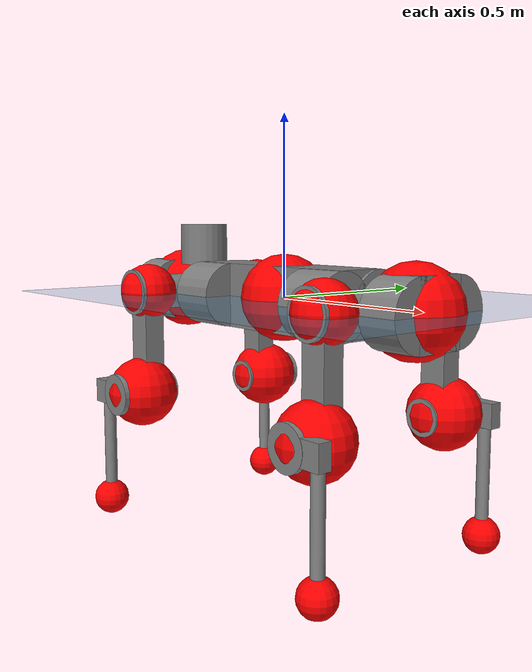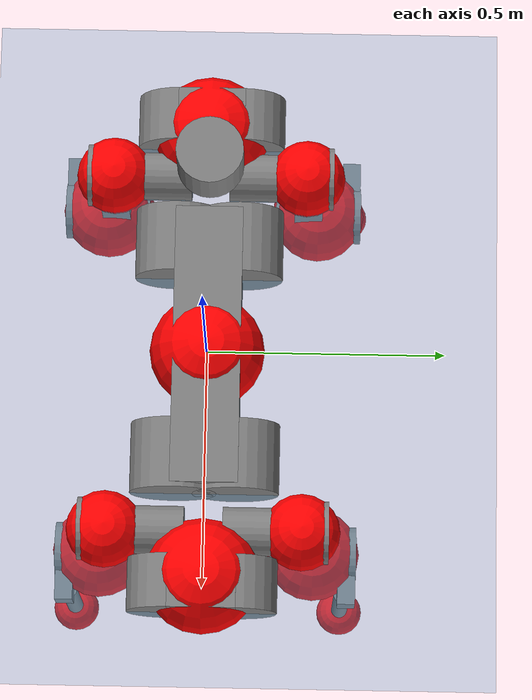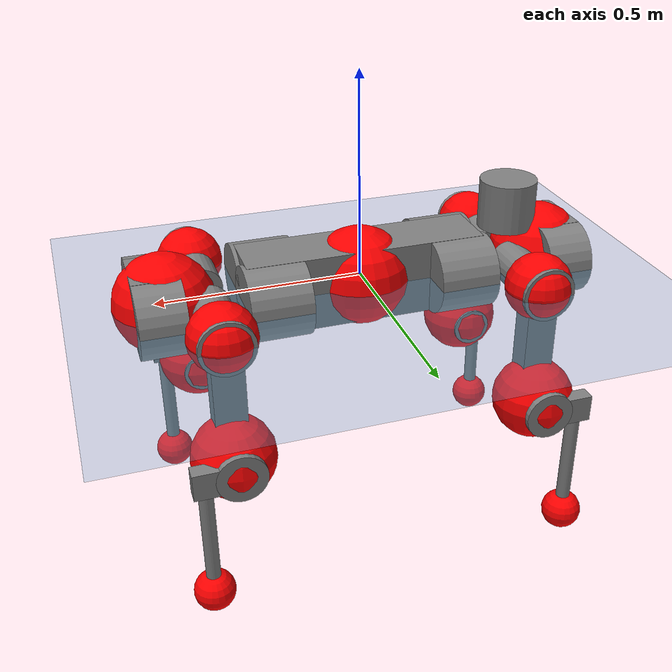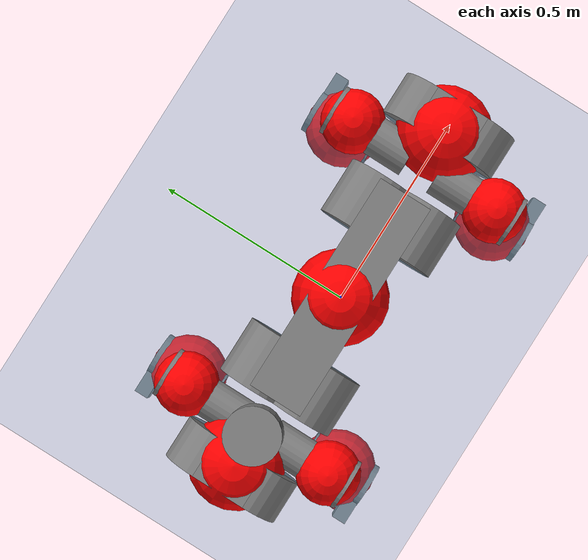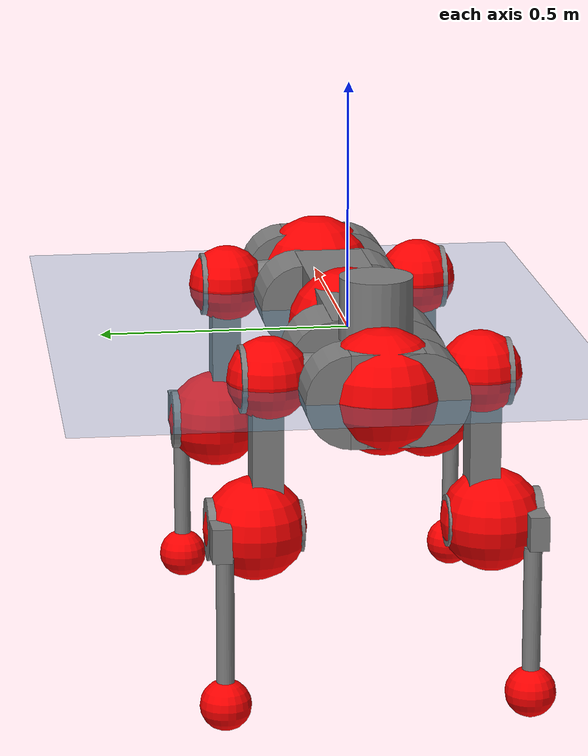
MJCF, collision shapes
<mujoco model="anymal_c">
  <compiler angle="radian" assetdir="assets" balanceinertia="true" inertiafromgeom="false"/>

  <option timestep="0.005" density="1.2" viscosity="2e-05"/>

  <size nkey="1"/>

  <visual>
    <quality shadowsize="8192"/>
    <map shadowclip="0.5"/>
  </visual>

  <default>
    <default class="/">
      <material specular="0" shininess="0.25"/>
      <geom contype="0" conaffinity="0" group="1" solref="-1000 -80"/>
      <site size="0.01 0.005 0.005" group="5"/>
      <general forcelimited="true" forcerange="-80 80" biastype="affine" gainprm="80" biasprm="0 -80 -2"/>
      <default class="anymal_c">
        <joint armature="0.01" damping="0.01" frictionloss="0.1"/>
        <default class="visual">
          <geom type="mesh" group="2"/>
          <default class="visual_zflip"/>
        </default>
        <default class="collision">
          <geom type="cylinder" group="3"/>
          <default class="foot">
            <geom size="0.03 0 0" type="sphere" condim="6" priority="1" friction="0.8 0.02 0.01" solimp="0.015 1 0.03"/>
          </default>
        </default>
      </default>
      <default class="reward_collision_sphere">
        <geom group="5" rgba="1 0 0 1"/>
      </default>
    </default>
  </default>

  <asset>
    <texture type="skybox" colorspace="auto" name="//unnamed_texture_0" builtin="gradient" rgb1="0.95 0.95 0.95" rgb2="0.95 0.95 0.95" width="100" height="600"/>
    <texture type="2d" colorspace="auto" name="texplane" builtin="checker" rgb1="0.345 0.575 0.748" rgb2="0.345 0.575 0.748" markrgb="1 1 1" width="512" height="512"/>
    <texture type="2d" colorspace="linear" name="base" file="base.png"/>
    <texture type="2d" colorspace="linear" name="top_shell" file="top_shell.png"/>
    <texture type="2d" colorspace="linear" name="bottom_shell" file="bottom_shell.png"/>
    <texture type="2d" colorspace="linear" name="remote" file="remote.png"/>
    <texture type="2d" colorspace="linear" name="hatch" file="hatch.png"/>
    <texture type="2d" colorspace="linear" name="handle" file="handle.png"/>
    <texture type="2d" colorspace="linear" name="face" file="face.png"/>
    <texture type="2d" colorspace="linear" name="battery" file="battery.png"/>
    <texture type="2d" colorspace="linear" name="lidar_cage" file="lidar_cage.png"/>
    <texture type="2d" colorspace="linear" name="depth_camera" file="depth_camera.png"/>
    <texture type="2d" colorspace="linear" name="wide_angle_camera" file="wide_angle_camera.png"/>
    <texture type="2d" colorspace="linear" name="lidar" file="lidar.png"/>
    <texture type="2d" colorspace="linear" name="drive" file="drive.png"/>
    <texture type="2d" colorspace="linear" name="hip_l" file="hip_l.png"/>
    <texture type="2d" colorspace="linear" name="shank_l" file="shank_l.png"/>
    <texture type="2d" colorspace="linear" name="foot" file="foot.png"/>
    <texture type="2d" colorspace="linear" name="thigh" file="thigh.png"/>
    <texture type="2d" colorspace="linear" name="shank_r" file="shank_r.png"/>
    <texture type="2d" colorspace="linear" name="hip_r" file="hip_r.png"/>
    <material name="MatPlane" class="/" texture="texplane" texuniform="true" texrepeat="2 2" specular="0.9" shininess="0.5"/>
    <material name="black_plastic" class="/" rgba="0.007 0.007 0.007 1"/>
    <material name="green" class="/" rgba="0.052 0.178 0.033 1"/>
    <material name="red" class="/" rgba="0.178 0.006 0.005 1"/>
    <material name="yellow" class="/" rgba="0.178 0.119 0.006 1"/>
    <material name="lwl" class="/" rgba="0.8 0.8 0.8 1"/>
    <material name="base" class="/" texture="base"/>
    <material name="top_shell" class="/" texture="top_shell"/>
    <material name="bottom_shell" class="/" texture="bottom_shell"/>
    <material name="hip_l" class="/" texture="hip_l"/>
    <material name="thigh" class="/" texture="thigh"/>
    <material name="shank_l" class="/" texture="shank_l"/>
    <material name="foot" class="/" texture="foot"/>
    <material name="hip_r" class="/" texture="hip_r"/>
    <material name="shank" class="/" texture="shank_r"/>
    <material name="hatch" class="/" texture="hatch"/>
    <material name="remote" class="/" texture="remote"/>
    <material name="handle" class="/" texture="handle"/>
    <material name="face" class="/" texture="face"/>
    <material name="depth_camera" class="/" texture="depth_camera"/>
    <material name="wide_angle_camera" class="/" texture="wide_angle_camera"/>
    <material name="battery" class="/" texture="battery"/>
    <material name="lidar_cage" class="/" texture="lidar_cage"/>
    <material name="lidar" class="/" texture="lidar"/>
    <material name="drive" class="/" texture="drive"/>
    <mesh name="base_0" class="/" file="base_0.obj"/>
    <mesh name="base_1" class="/" file="base_1.obj"/>
    <mesh name="base_2" class="/" file="base_2.obj"/>
    <mesh name="base_3" class="/" file="base_3.obj"/>
    <mesh name="base_4" class="/" file="base_4.obj"/>
    <mesh name="base_5" class="/" file="base_5.obj"/>
    <mesh name="top_shell" class="/" file="top_shell.obj"/>
    <mesh name="bottom_shell" class="/" file="bottom_shell.obj"/>
    <mesh name="remote" class="/" file="remote.obj"/>
    <mesh name="handle" class="/" file="handle.obj"/>
    <mesh name="face" class="/" file="face.obj"/>
    <mesh name="wide_angle_camera" class="/" file="wide_angle_camera.obj"/>
    <mesh name="depth_camera" class="/" file="depth_camera.obj"/>
    <mesh name="battery" class="/" file="battery.obj"/>
    <mesh name="lidar_cage" class="/" file="lidar_cage.obj"/>
    <mesh name="lidar" class="/" file="lidar.obj"/>
    <mesh name="drive" class="/" file="drive.obj"/>
    <mesh name="hip_l" class="/" file="hip_l.obj"/>
    <mesh name="thigh" class="/" file="thigh.obj"/>
    <mesh name="shank_l" class="/" file="shank_l.obj"/>
    <mesh name="foot" class="/" file="foot.obj"/>
    <mesh name="hip_r" class="/" file="hip_r.obj"/>
    <mesh name="hatch" class="/" file="hatch.obj"/>
    <mesh name="shank_r" class="/" file="shank_r.obj"/>
  </asset>

  <worldbody>
    <geom name="floor" class="/" size="100 100 0.125" type="plane" group="0" material="MatPlane"/>
    <light name="toplight_shadow" class="/" pos="0 0 5" dir="0.0990148 0.0990148 -0.990148" type="directional" ambient="0.04 0.04 0.04" diffuse="0.55 0.55 0.55" specular="0.12 0.12 0.12"/>
    <light name="toplight_fill" class="/" pos="0 0 5" dir="0.0990148 0.0990148 -0.990148" type="directional" castshadow="false" ambient="0.04 0.04 0.04" diffuse="0.3 0.3 0.3" specular="0.08 0.08 0.08"/>
    <body name="trunk" childclass="anymal_c" pos="-2.3164e-05 0.00086684 -0.000136057" quat="1 -0.00024433 0.000116568 -0.000238117">
      <inertial pos="0.00205396 0.000201208 0.0514418" quat="0.500003 0.499373 0.500014 0.500609" mass="19.8009" diaginertia="0.835036 0.433319 0.265508"/>
      <joint name="//unnamed_joint_0" type="free" armature="0" damping="0" frictionloss="0"/>
      <geom name="//unnamed_geom_1" class="visual" material="green" mesh="base_0"/>
      <geom name="//unnamed_geom_2" class="visual" material="yellow" mesh="base_1"/>
      <geom name="//unnamed_geom_3" class="visual" material="red" mesh="base_2"/>
      <geom name="//unnamed_geom_4" class="visual" material="black_plastic" mesh="base_3"/>
      <geom name="//unnamed_geom_5" class="visual" material="lwl" mesh="base_4"/>
      <geom name="//unnamed_geom_6" class="visual" material="base" mesh="base_5"/>
      <geom name="trunk_1" class="collision" size="0.292887 0.070697 0.0908961" type="box"/>
      <geom name="trunk_2" class="collision" size="0.0908961 0.0732219" pos="0.229772 0.0651547 0" quat="0.707107 0 0.707107 0"/>
      <geom name="trunk_3" class="collision" size="0.0908961 0.0732219" pos="-0.229772 0.0651547 0" quat="0.707107 0 0.707107 0"/>
      <geom name="trunk_4" class="collision" size="0.0908961 0.0732219" pos="0.229772 -0.0651547 0" quat="0.707107 0 0.707107 0"/>
      <geom name="trunk_5" class="collision" size="0.0908961 0.0732219" pos="-0.229772 -0.0651547 0" quat="0.707107 0 0.707107 0"/>
      <geom name="//unnamed_geom_12" class="visual" material="top_shell" mesh="top_shell"/>
      <geom name="//unnamed_geom_13" class="visual" material="bottom_shell" mesh="bottom_shell"/>
      <geom name="//unnamed_geom_14" class="visual" material="remote" mesh="remote"/>
      <geom name="//unnamed_geom_15" class="visual" material="handle" mesh="handle"/>
      <geom name="//unnamed_geom_16" class="visual" pos="0.437888 0 0" quat="1 0 0 0" material="face" mesh="face"/>
      <geom name="trunk_6" class="collision" size="0.0555476 0.070697 0.0908961" pos="0.495991 0 0" type="box"/>
      <geom name="//unnamed_geom_18" class="collision" size="0.0908961 0.0555476" pos="0.495991 0.0651547 0" quat="0.707107 0 0.707107 0"/>
      <geom name="//unnamed_geom_19" class="collision" size="0.0908961 0.0555476" pos="0.495991 -0.0651547 0" quat="0.707107 0 0.707107 0"/>
      <geom name="//unnamed_geom_20" class="visual" pos="0.487698 0 -0.0303412" quat="0.965926 0 0.258819 0" material="depth_camera" mesh="depth_camera"/>
      <geom name="//unnamed_geom_21" class="visual" pos="0.541946 0 0.0156087" material="wide_angle_camera" mesh="wide_angle_camera"/>
      <geom name="//unnamed_geom_22" class="visual_zflip" pos="-0.437888 0 0" quat="0 0 0 1" material="face" mesh="face"/>
      <geom name="trunk_7" class="collision" size="0.0555476 0.070697 0.0908961" pos="-0.495991 0 0" quat="0 0 0 1" type="box"/>
      <geom name="//unnamed_geom_24" class="collision" size="0.0908961 0.0555476" pos="-0.495991 -0.0651547 0" quat="0 -0.707107 0 0.707107"/>
      <geom name="//unnamed_geom_25" class="collision" size="0.0908961 0.0555476" pos="-0.495991 0.0651547 0" quat="0 -0.707107 0 0.707107"/>
      <geom name="//unnamed_geom_26" class="visual" pos="-0.487698 0 -0.0303412" quat="0 -0.258819 0 0.965926" material="depth_camera" mesh="depth_camera"/>
      <geom name="//unnamed_geom_27" class="visual_zflip" pos="-0.541946 0 0.0156087" quat="0 0 0 1" material="wide_angle_camera" mesh="wide_angle_camera"/>
      <geom name="//unnamed_geom_28" class="visual" material="battery" mesh="battery"/>
      <geom name="//unnamed_geom_29" class="visual" pos="0 0.0695183 0.030394" quat="0.683013 -0.183013 0.183013 0.683013" material="depth_camera" mesh="depth_camera"/>
      <geom name="//unnamed_geom_30" class="visual" pos="0 -0.0695183 0.030394" quat="0.683013 0.183013 0.183013 -0.683013" material="depth_camera" mesh="depth_camera"/>
      <geom name="//unnamed_geom_31" class="visual" pos="-0.384538 0 0.0766358" quat="1 0 0 0" material="lidar_cage" mesh="lidar_cage"/>
      <geom name="trunk_8" class="collision" size="0.070697 0.0605974" pos="-0.384538 0 0.139196"/>
      <geom name="//unnamed_geom_33" class="visual" pos="-0.384538 -4.93615e-05 0.148267" quat="0.707107 0 0 -0.707107" material="lidar" mesh="lidar"/>
      <geom name="//unnamed_geom_34" class="visual" pos="0.316822 0.0968411 -1.92998e-09" quat="0.258819 0.965926 0 0" material="drive" mesh="drive"/>
      <geom name="//unnamed_geom_35" class="visual" pos="0.316822 -0.0968411 1.92998e-09" quat="0.258819 -0.965926 0 0" material="drive" mesh="drive"/>
      <geom name="//unnamed_geom_36" class="visual" pos="-0.316822 0.0968411 1.92998e-09" quat="0 0 0.965926 -0.258819" material="drive" mesh="drive"/>
      <geom name="//unnamed_geom_37" class="visual" pos="-0.316822 -0.0968411 -1.92998e-09" quat="0 0 -0.965926 -0.258819" material="drive" mesh="drive"/>
      <geom name="//unnamed_geom_38" class="visual" pos="0.122545 0 0.0761145" quat="1 0 0 0" material="hatch" mesh="hatch"/>
      <geom name="//unnamed_geom_39" class="reward_collision_sphere" size="0.121195"/>
      <geom name="//unnamed_geom_40" class="reward_collision_sphere" size="0.121195" pos="0.475391 0 0"/>
      <geom name="//unnamed_geom_41" class="reward_collision_sphere" size="0.121195" pos="-0.475391 0 0"/>
      <site name="imu" pos="0.263801 0.00907072 0.045852" size="0.0100996"/>
      <camera name="track" pos="0 -1.86156 0" quat="0.707107 0.707107 0 0" mode="trackcom"/>
      <camera name="ego_camera" pos="0.475391 0 -0.0417066" quat="-0.5 -0.5 0.5 0.5"/>
      <body name="LF_HIP" pos="0.317351 0.0977669 -0.000669678" quat="0.258865 0.965914 -7.25493e-05 -6.46668e-05">
        <inertial pos="0.0596232 -0.0135527 -0.00801997" quat="-0.127983 0.710027 -0.135366 0.679087" mass="2.8527" diaginertia="0.00765662 0.0034227 0.00400149"/>
        <joint name="LF_HAA" pos="0 0 0" axis="0.999992 -0.00355599 -0.00180945" range="-0.716143 0.499185" armature="0.00969678" damping="0.0150873" frictionloss="0.100958"/>
        <geom name="//unnamed_geom_42" class="visual" pos="0 -0.000113532 1.86475e-05" quat="0.258819 -0.965926 0 0" material="hip_l" mesh="hip_l"/>
        <geom name="//unnamed_geom_43" class="visual" pos="0.0632798 -0.0750624 -0.0441649" quat="0.183013 -0.683013 0.683013 0.183013" material="drive" mesh="drive"/>
        <geom name="//unnamed_geom_44" class="collision" size="0.0504978 0.070697" pos="0.0632798 -0.011132 -0.00719959" quat="-0.353553 -0.612372 0.612372 -0.353553"/>
        <body name="LF_THIGH" pos="0.0637232 -0.0673931 -0.043515" quat="0.183041 -0.683009 0.683005 0.183029">
          <inertial pos="0.0328407 0.000141079 -0.256508" quat="0.993072 -0.00467566 -0.0815856 0.0844336" mass="3.13837" diaginertia="0.0398715 0.0209678 0.00513567"/>
          <joint name="LF_HFE" pos="0 0 0" axis="0.999998 -0.00180627 -0.001191" stiffness="0.00270685" range="-3.13054 3.12197" armature="0.00968217" damping="0.00667161" frictionloss="0.0991953"/>
          <geom name="//unnamed_geom_45" class="visual" pos="0.00249979 3.93908e-06 0" quat="0.707107 0 0 -0.707107" material="thigh" mesh="thigh"/>
          <geom name="//unnamed_geom_46" class="collision" size="0.0656472 0.0403983" pos="0.042257 0 0" quat="0.5 0.5 -0.5 -0.5"/>
          <geom name="//unnamed_geom_47" class="collision" size="0.0378734 0.0302987 0.142721" pos="0.0316927 0 -0.147343" quat="0.707107 0 0 -0.707107" type="box"/>
          <geom name="//unnamed_geom_48" class="visual" pos="0.105959 0 -0.297159" quat="1 0 0 0" material="drive" mesh="drive"/>
          <geom name="//unnamed_geom_49" class="collision" size="0.0504978 0.070697" pos="0.0320097 0 -0.297159" quat="0.707107 0 0.707107 0"/>
          <geom name="//unnamed_geom_50" class="reward_collision_sphere" size="0.0807965" pos="0.0264106 0 0"/>
          <body name="LF_SHANK" pos="0.105954 -0.000316009 -0.297232" quat="1 0.000173144 0.00034857 -0.000242713">
            <inertial pos="0.00503956 -0.0574943 -0.0833003" quat="0.993041 -0.114598 -0.00195491 -0.0270662" mass="0.609575" diaginertia="0.0133029 0.00641832 0.0013934"/>
            <joint name="LF_KFE" pos="0 0 0" axis="0.999996 0.0021707 -0.00186122" range="-3.13446 3.15153" armature="0.0104272" damping="0.00977547" frictionloss="0.10164"/>
            <geom name="//unnamed_geom_51" class="visual" pos="0.000815126 0.00434629 0" quat="0.707107 0 0 -0.707107" material="shank_l" mesh="shank_l"/>
            <geom name="LF_kfe_act" class="collision" size="0.0605974 0.0201991" pos="0.0211285 0 0" quat="0.5 0.5 -0.5 -0.5"/>
            <geom name="//unnamed_geom_53" class="collision" size="0.0580715 0.034086 0.0191892" pos="0.0211285 -0.053519 0" quat="0.5 0.5 -0.5 -0.5" type="box"/>
            <geom name="//unnamed_geom_54" class="visual" pos="0.0137861 -0.0804616 -0.352389" quat="0.382683 0 0 -0.92388" material="foot" mesh="foot"/>
            <geom name="LF_calf" class="collision" size="0.0176742 0.142658" pos="0.0137863 -0.0818623 -0.176195" quat="0.707107 0 0 -0.707107"/>
            <geom name="LF_foot" class="foot" size="0.0290393" pos="0.0137863 -0.0818623 -0.328929" quat="0.707107 0 0 -0.707107"/>
            <geom name="//unnamed_geom_57" class="reward_collision_sphere" size="0.100996" pos="-0.0528212 0 0"/>
            <geom name="//unnamed_geom_58" class="reward_collision_sphere" size="0.0504978" pos="0.0137863 -0.0818623 -0.328929"/>
            <site name="LF_foot" class="foot" pos="0.0137863 -0.0818623 -0.328929" quat="0.707107 0 0 -0.707107" size="0.0100996"/>
          </body>
        </body>
      </body>
      <body name="RF_HIP" pos="0.317253 -0.0975655 -0.000352968" quat="0.258832 -0.965922 2.75966e-05 1.31691e-05">
        <inertial pos="0.0592585 0.0150269 -0.00878118" quat="0.135285 0.679061 0.127968 0.710069" mass="2.85929" diaginertia="0.00762792 0.00338454 0.00405093"/>
        <joint name="RF_HAA" pos="0 0 0" axis="0.999998 0.000529935 -0.00185911" range="-0.505584 0.725909" armature="0.0100321" damping="0.0100341" frictionloss="0.101453"/>
        <geom name="//unnamed_geom_59" class="visual" pos="0 0.000113531 1.86474e-05" quat="0.258819 0.965926 0 0" material="hip_r" mesh="hip_r"/>
        <geom name="//unnamed_geom_60" class="visual" pos="0.0632798 0.0750624 -0.0441649" quat="0.183013 0.683013 0.683013 -0.183013" material="drive" mesh="drive"/>
        <geom name="//unnamed_geom_61" class="collision" size="0.0504978 0.070697" pos="0.0632798 0.011132 -0.00719959" quat="-0.353553 0.612372 0.612372 0.353553"/>
        <body name="RF_THIGH" pos="0.06355 0.0673342 -0.0446502" quat="0.183051 0.683055 0.682907 -0.183213">
          <inertial pos="0.0334943 -0.000272473 -0.256508" quat="0.992696 -0.00517741 -0.0811934 0.0890821" mass="3.13742" diaginertia="0.039624 0.0208362 0.00518702"/>
          <joint name="RF_HFE" pos="0 0 0" axis="0.999999 0.000834614 0.000584517" stiffness="0.00686748" range="-3.15134 3.13328" armature="0.010104" damping="0.0100685" frictionloss="0.100842"/>
          <geom name="//unnamed_geom_62" class="visual" pos="0.00249979 3.93908e-06 0" quat="0.707107 0 0 -0.707107" material="thigh" mesh="thigh"/>
          <geom name="//unnamed_geom_63" class="collision" size="0.0656472 0.0403983" pos="0.042257 0 0" quat="0.5 0.5 0.5 0.5"/>
          <geom name="//unnamed_geom_64" class="collision" size="0.0378734 0.0302987 0.142721" pos="0.0316927 0 -0.147343" quat="0.707107 0 0 0.707107" type="box"/>
          <geom name="//unnamed_geom_65" class="visual" pos="0.105959 0 -0.297159" quat="1 0 0 0" material="drive" mesh="drive"/>
          <geom name="//unnamed_geom_66" class="collision" size="0.0504978 0.070697" pos="0.0320097 0 -0.297159" quat="0.707107 0 0.707107 0"/>
          <geom name="//unnamed_geom_67" class="reward_collision_sphere" size="0.0807965" pos="0.0264106 0 0"/>
          <body name="RF_SHANK" pos="0.10488 0.000376649 -0.297535" quat="1 -2.59746e-05 -2.46695e-05 1.47533e-05">
            <inertial pos="0.00539093 0.0570029 -0.084416" quat="0.99294 0.115775 -0.000583018 0.0257925" mass="0.604608" diaginertia="0.0131638 0.00646819 0.00136801"/>
            <joint name="RF_KFE" pos="0 0 0" axis="0.999999 0.000380937 0.000987543" range="-3.13001 3.14212" armature="0.0100115" damping="0.00641023" frictionloss="0.103353"/>
            <geom name="//unnamed_geom_68" class="visual" pos="0.000815122 -0.00434629 0" quat="0.707107 0 0 0.707107" material="shank" mesh="shank_r"/>
            <geom name="RF_kfe_act" class="collision" size="0.0605974 0.0201991" pos="0.0211285 0 0" quat="0.5 0.5 0.5 0.5"/>
            <geom name="//unnamed_geom_70" class="collision" size="0.0580715 0.034086 0.0191892" pos="0.0211285 0.053519 0" quat="0.5 0.5 0.5 0.5" type="box"/>
            <geom name="//unnamed_geom_71" class="visual" pos="0.0137865 0.0804616 -0.352389" quat="0.382683 0 0 0.92388" material="foot" mesh="foot"/>
            <geom name="RF_calf" class="collision" size="0.0176742 0.142658" pos="0.0137863 0.0818623 -0.176195" quat="0.707107 0 0 0.707107"/>
            <geom name="RF_foot" class="foot" size="0.0297812" pos="0.0137863 0.0818623 -0.328929" quat="0.707107 0 0 0.707107"/>
            <geom name="//unnamed_geom_74" class="reward_collision_sphere" size="0.100996" pos="-0.0528212 0 0"/>
            <geom name="//unnamed_geom_75" class="reward_collision_sphere" size="0.0504978" pos="0.0137863 0.0818623 -0.328929"/>
            <site name="RF_foot" class="foot" pos="0.0137863 0.0818623 -0.328929" quat="0.707107 0 0 0.707107" size="0.0100996"/>
          </body>
        </body>
      </body>
      <body name="LH_HIP" pos="-0.316263 0.0976667 -0.000222043" quat="0.000412986 7.49204e-05 0.96596 -0.258692">
        <inertial pos="0.0600748 0.0136406 -0.00899496" quat="0.13512 0.67904 0.128092 0.710099" mass="2.87758" diaginertia="0.00770632 0.00339945 0.00402954"/>
        <joint name="LH_HAA" pos="0 0 0" axis="1 0.000700544 0.000142286" range="-0.498913 0.720807" armature="0.010069" damping="0.00866303" frictionloss="0.101907"/>
        <geom name="//unnamed_geom_76" class="visual" pos="0 0.000113531 1.86474e-05" quat="-0.258819 -0.965926 0 0" material="hip_r" mesh="hip_r"/>
        <geom name="//unnamed_geom_77" class="visual" pos="0.0632798 0.0750624 -0.0441649" quat="0.183013 0.683013 0.683013 -0.183013" material="drive" mesh="drive"/>
        <geom name="//unnamed_geom_78" class="collision" size="0.0504978 0.070697" pos="0.0632798 0.011132 -0.00719959" quat="-0.353553 0.612372 0.612372 0.353553"/>
        <body name="LH_THIGH" pos="0.0626735 0.0671726 -0.0449741" quat="0.183126 0.682997 0.682928 -0.183273">
          <inertial pos="0.0324763 -0.000215606 -0.25608" quat="0.992979 -0.00652571 -0.0788522 0.0879322" mass="3.18643" diaginertia="0.0400197 0.0210785 0.00517802"/>
          <joint name="LH_HFE" pos="0 0 0" axis="0.999999 -0.00160349 0.000521581" range="-3.14163 3.13791" armature="0.0104831" damping="0.00693823" frictionloss="0.0994596"/>
          <geom name="//unnamed_geom_79" class="visual" pos="0.00249979 3.93908e-06 0" quat="0.707107 0 0 -0.707107" material="thigh" mesh="thigh"/>
          <geom name="//unnamed_geom_80" class="collision" size="0.0656472 0.0403983" pos="0.042257 0 0" quat="0.5 0.5 -0.5 -0.5"/>
          <geom name="//unnamed_geom_81" class="collision" size="0.0378734 0.0302987 0.142721" pos="0.0316927 0 -0.147343" quat="0.707107 0 0 -0.707107" type="box"/>
          <geom name="//unnamed_geom_82" class="visual" pos="0.105959 0 -0.297159" quat="1 0 0 0" material="drive" mesh="drive"/>
          <geom name="//unnamed_geom_83" class="collision" size="0.0504978 0.070697" pos="0.0320097 0 -0.297159" quat="0.707107 0 0.707107 0"/>
          <geom name="//unnamed_geom_84" class="reward_collision_sphere" size="0.0807965" pos="0.0264106 0 0"/>
          <body name="LH_SHANK" pos="0.106209 -0.000639513 -0.297378" quat="1 -8.59186e-05 8.20369e-05 -8.38555e-05">
            <inertial pos="0.00575898 0.0569341 -0.0847168" quat="0.992965 0.115621 -0.000684206 0.0255254" mass="0.603878" diaginertia="0.0133709 0.00645372 0.00137882"/>
            <joint name="LH_KFE" pos="0 0 0" axis="0.999999 0.00130922 -0.000767574" stiffness="0.000445119" range="-3.15414 3.13963" armature="0.0100226" damping="0.00786532" frictionloss="0.0999888"/>
            <geom name="//unnamed_geom_85" class="visual" pos="0.000815122 -0.00434629 0" quat="-0.707107 0 0 -0.707107" material="shank" mesh="shank_r"/>
            <geom name="LH_kfe_act" class="collision" size="0.0605974 0.0201991" pos="0.0211285 0 0" quat="0.5 0.5 -0.5 -0.5"/>
            <geom name="//unnamed_geom_87" class="collision" size="0.0580715 0.034086 0.0191892" pos="0.0211285 0.053519 0" quat="0.5 0.5 -0.5 -0.5" type="box"/>
            <geom name="//unnamed_geom_88" class="visual" pos="0.0137865 0.0804616 -0.352389" quat="-0.382683 0 0 -0.92388" material="foot" mesh="foot"/>
            <geom name="LH_calf" class="collision" size="0.0176742 0.142658" pos="0.0137863 0.0818623 -0.176195" quat="0.707107 0 0 -0.707107"/>
            <geom name="LH_foot" class="foot" size="0.030421" pos="0.0137863 0.0818623 -0.328929" quat="0.707107 0 0 -0.707107"/>
            <geom name="//unnamed_geom_91" class="reward_collision_sphere" size="0.100996" pos="-0.0528212 0 0"/>
            <geom name="//unnamed_geom_92" class="reward_collision_sphere" size="0.0504978" pos="0.0137863 0.0818623 -0.328929"/>
            <site name="LH_foot" class="foot" pos="0.0137863 0.0818623 -0.328929" quat="0.707107 0 0 -0.707107" size="0.0100996"/>
          </body>
        </body>
      </body>
      <body name="RH_HIP" pos="-0.316367 -0.0972362 -0.000347866" quat="0.000152175 -0.000276465 -0.965992 -0.258573">
        <inertial pos="0.0598412 -0.0151074 -0.00886404" quat="-0.127288 0.710824 -0.135235 0.678409" mass="2.86025" diaginertia="0.00762364 0.00339377 0.0040408"/>
        <joint name="RH_HAA" pos="0 0 0" axis="0.999999 -0.000706567 -0.000902325" range="-0.723298 0.492512" armature="0.010052" damping="0.0135761" frictionloss="0.103616"/>
        <geom name="//unnamed_geom_93" class="visual" pos="0 -0.000113532 1.86475e-05" quat="-0.258819 0.965926 0 0" material="hip_l" mesh="hip_l"/>
        <geom name="//unnamed_geom_94" class="visual" pos="0.0632798 -0.0750624 -0.0441649" quat="-0.183013 0.683013 -0.683013 -0.183013" material="drive" mesh="drive"/>
        <geom name="//unnamed_geom_95" class="collision" size="0.0504978 0.070697" pos="0.0632798 -0.011132 -0.00719959" quat="0.353553 0.612372 -0.612372 0.353553"/>
        <body name="RH_THIGH" pos="0.0627651 -0.0678472 -0.0435594" quat="-0.182984 0.683055 -0.682979 -0.18301">
          <inertial pos="0.0328667 0.000475898 -0.256182" quat="0.993242 -0.00502335 -0.080116 0.0838269" mass="3.16669" diaginertia="0.0396858 0.0208646 0.00516289"/>
          <joint name="RH_HFE" pos="0 0 0" axis="0.999998 0.000522243 0.00206723" range="-3.13434 3.12688" armature="0.0098197" damping="0.00587058" frictionloss="0.0986226"/>
          <geom name="//unnamed_geom_96" class="visual" pos="0.00249979 3.93908e-06 0" quat="0.707107 0 0 -0.707107" material="thigh" mesh="thigh"/>
          <geom name="//unnamed_geom_97" class="collision" size="0.0656472 0.0403983" pos="0.042257 0 0" quat="0.5 0.5 0.5 0.5"/>
          <geom name="//unnamed_geom_98" class="collision" size="0.0378734 0.0302987 0.142721" pos="0.0316927 0 -0.147343" quat="0.707107 0 0 0.707107" type="box"/>
          <geom name="//unnamed_geom_99" class="visual" pos="0.105959 0 -0.297159" quat="1 0 0 0" material="drive" mesh="drive"/>
          <geom name="//unnamed_geom_100" class="collision" size="0.0504978 0.070697" pos="0.0320097 0 -0.297159" quat="0.707107 0 0.707107 0"/>
          <geom name="//unnamed_geom_101" class="reward_collision_sphere" size="0.0807965" pos="0.0264106 0 0"/>
          <body name="RH_SHANK" pos="0.105105 -0.000593392 -0.296811" quat="1 2.46706e-05 0.00012777 -7.37671e-05">
            <inertial pos="0.00634841 -0.0569724 -0.0847313" quat="0.992854 -0.116542 -0.00119158 -0.0256408" mass="0.607553" diaginertia="0.0132514 0.00651121 0.00136208"/>
            <joint name="RH_KFE" pos="0 0 0" axis="0.999986 0.00127133 -0.00504738" range="-3.14397 3.14548" armature="0.0105389" damping="0.00955204" frictionloss="0.103416"/>
            <geom name="//unnamed_geom_102" class="visual" pos="0.000815126 0.00434629 0" quat="0.707107 0 0 -0.707107" material="shank_l" mesh="shank_l"/>
            <geom name="RH_kfe_act" class="collision" size="0.0605974 0.0201991" pos="0.0211285 0 0" quat="0.5 0.5 0.5 0.5"/>
            <geom name="//unnamed_geom_104" class="collision" size="0.0580715 0.034086 0.0191892" pos="0.0211285 -0.053519 0" quat="0.5 0.5 0.5 0.5" type="box"/>
            <geom name="//unnamed_geom_105" class="visual" pos="0.0137861 -0.0804616 -0.352389" quat="0.382683 0 0 -0.92388" material="foot" mesh="foot"/>
            <geom name="RH_calf" class="collision" size="0.0176742 0.142658" pos="0.0137863 -0.0818623 -0.176195" quat="0.707107 0 0 0.707107"/>
            <geom name="RH_foot" class="foot" size="0.0279663" pos="0.0137863 -0.0818623 -0.328929" quat="0.707107 0 0 0.707107"/>
            <geom name="//unnamed_geom_108" class="reward_collision_sphere" size="0.100996" pos="-0.0528212 0 0"/>
            <geom name="//unnamed_geom_109" class="reward_collision_sphere" size="0.0504978" pos="0.0137863 -0.0818623 -0.328929"/>
            <site name="RH_foot" class="foot" pos="0.0137863 -0.0818623 -0.328929" quat="0.707107 0 0 0.707107" size="0.0100996"/>
          </body>
        </body>
      </body>
    </body>
  </worldbody>

  <contact>
    <pair class="/" geom1="floor" geom2="LF_foot" name="//unnamed_contact_0"/>
    <pair class="/" geom1="floor" geom2="RF_foot" name="//unnamed_contact_1"/>
    <pair class="/" geom1="floor" geom2="LH_foot" name="//unnamed_contact_2"/>
    <pair class="/" geom1="floor" geom2="RH_foot" name="//unnamed_contact_3"/>
  </contact>

  <actuator>
    <general name="LF_HAA" class="/" joint="LF_HAA" forcerange="-81.1937 81.1937" gainprm="81.0775" biasprm="0 -81.0775 -1.97808"/>
    <general name="LF_HFE" class="/" joint="LF_HFE" forcerange="-81.8383 81.8383" gainprm="81.0775" biasprm="0 -81.0775 -1.97808"/>
    <general name="LF_KFE" class="/" joint="LF_KFE" forcerange="-81.4897 81.4897" gainprm="81.0775" biasprm="0 -81.0775 -1.97808"/>
    <general name="RF_HAA" class="/" joint="RF_HAA" forcerange="-83.0074 83.0074" gainprm="81.0775" biasprm="0 -81.0775 -1.97808"/>
    <general name="RF_HFE" class="/" joint="RF_HFE" forcerange="-82.1759 82.1759" gainprm="81.0775" biasprm="0 -81.0775 -1.97808"/>
    <general name="RF_KFE" class="/" joint="RF_KFE" forcerange="-83.5314 83.5314" gainprm="81.0775" biasprm="0 -81.0775 -1.97808"/>
    <general name="LH_HAA" class="/" joint="LH_HAA" forcerange="-81.8193 81.8193" gainprm="81.0775" biasprm="0 -81.0775 -1.97808"/>
    <general name="LH_HFE" class="/" joint="LH_HFE" forcerange="-81.962 81.962" gainprm="81.0775" biasprm="0 -81.0775 -1.97808"/>
    <general name="LH_KFE" class="/" joint="LH_KFE" forcerange="-80.6112 80.6112" gainprm="81.0775" biasprm="0 -81.0775 -1.97808"/>
    <general name="RH_HAA" class="/" joint="RH_HAA" forcerange="-81.2287 81.2287" gainprm="81.0775" biasprm="0 -81.0775 -1.97808"/>
    <general name="RH_HFE" class="/" joint="RH_HFE" forcerange="-79.739 79.739" gainprm="81.0775" biasprm="0 -81.0775 -1.97808"/>
    <general name="RH_KFE" class="/" joint="RH_KFE" forcerange="-80.2013 80.2013" gainprm="81.0775" biasprm="0 -81.0775 -1.97808"/>
  </actuator>

  <sensor>
    <gyro site="imu" name="imu_angular_velocity"/>
    <velocimeter site="imu" name="imu_linear_velocity"/>
    <framelinvel objtype="site" objname="LF_foot" name="LF_foot_global_linear_velocity"/>
    <framelinvel objtype="site" objname="RF_foot" name="RF_foot_global_linear_velocity"/>
    <framelinvel objtype="site" objname="LH_foot" name="LH_foot_global_linear_velocity"/>
    <framelinvel objtype="site" objname="RH_foot" name="RH_foot_global_linear_velocity"/>
  </sensor>

  <keyframe>
    <key name="home" qpos="0 0 0.55 1 0 0 0 0 0.4 -0.8 0 -0.4 0.8 0 -0.4 0.8 0 0.4 -0.8"/>
  </keyframe>
</mujoco>
